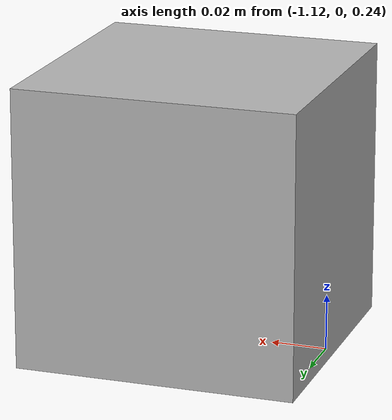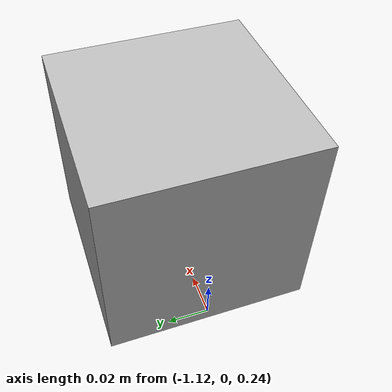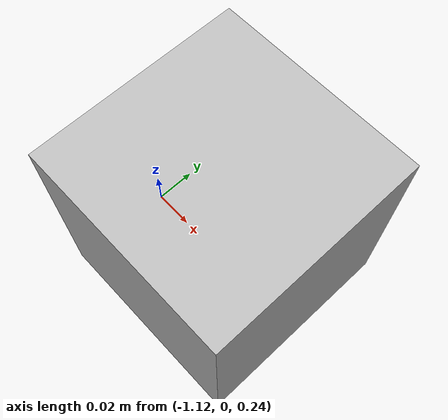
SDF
<?xml version='1.0'?>
<sdf version='1.6'>
  <model name="simple_camera">
     <pose frame=''>-1.07303 0 0.28895 0 0 3.14159</pose>
    <link name="link">
      <inertial>
        <mass>0.1</mass>
      </inertial>
      <collision name="collision">
        <geometry>
          <box>
            <size>0.1 0.1 0.1</size>
          </box>
        </geometry>
      </collision>
      <visual name="visual">
        <geometry>
          <box>
            <size>0.1 0.1 0.1</size>
          </box>
        </geometry>
      </visual>
      <sensor name="camera" type="camera">
        <camera>
          <horizontal_fov>1.047</horizontal_fov>
          <image>
            <width>640</width>
            <height>480</height>
          </image>
          <clip>
            <near>0.1</near>
            <far>100</far>
          </clip>
          <lens>
            <type>custom</type>
            <scale_to_hfov>true</scale_to_hfov>
            <cutoff_angle>3.1415</cutoff_angle>
            <env_texture_size>512</env_texture_size>
            <custom_function>
              <c1>1.05</c1>
              <c2>4</c2>
              <f>1.0</f>
              <fun>tan</fun>
            </custom_function>
          </lens>
        </camera>
        <always_on>1</always_on>
        <update_rate>30</update_rate>
      </sensor>
    </link>
    <joint name='link_0_JOINT_0_0' type='fixed'>
      <parent>differential_drive_robot::link_0</parent>
      <child>simple_camera::link</child>
      <pose frame=''>0 0 0 0 -0 0</pose>
      <physics>
        <ode>
          <limit>
            <cfm>0</cfm>
            <erp>0.2</erp>
          </limit>
          <suspension>
            <cfm>0</cfm>
            <erp>0.2</erp>
          </suspension>
        </ode>
      </physics>
    </joint>
  </model>

</sdf>
